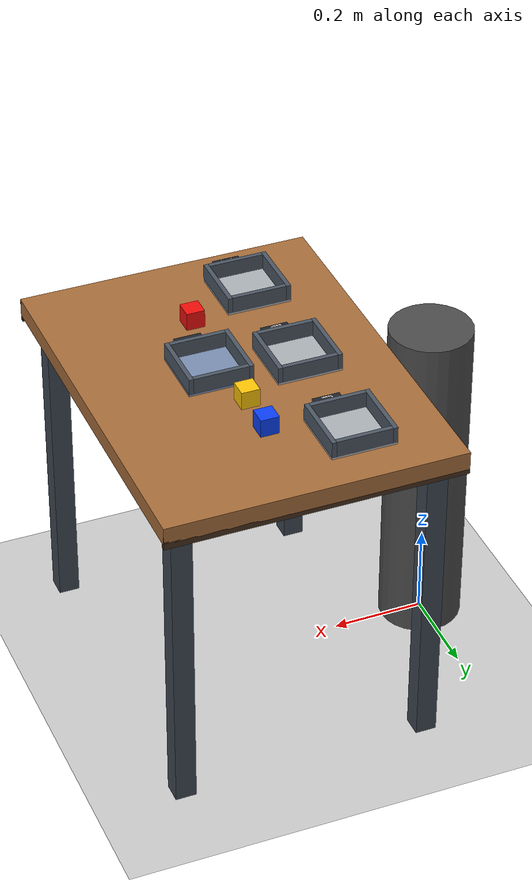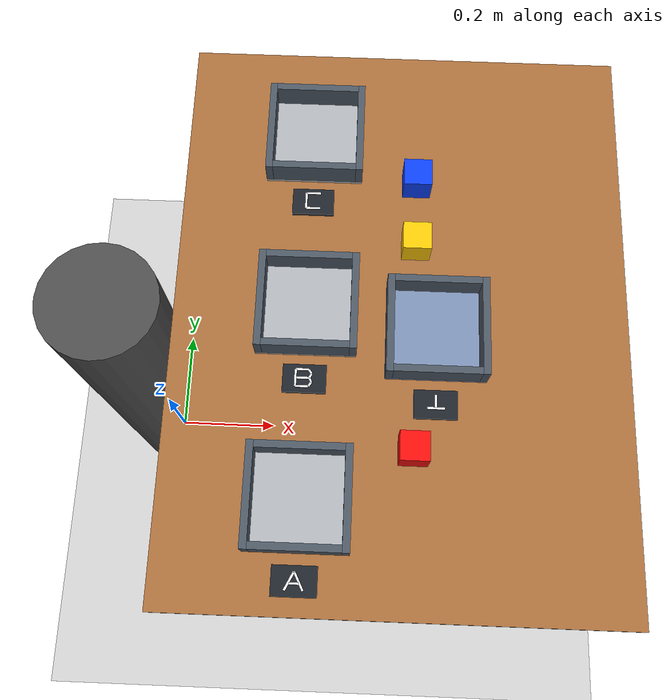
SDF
<?xml version="1.0"?>
<sdf version="1.6">
  <world name="default">
    <gravity>0 0 0</gravity>
    <include><uri>model://sun</uri></include>
    <include><uri>model://ground_plane</uri></include>
    <include><uri>model://ur3_task_table</uri><name>table</name><pose>0.43 0.0 0.72 0 0 0</pose></include>
    <include><uri>model://red_cube</uri><name>red_cube</name><pose>0.45 -0.2 0.76 0 0 0</pose></include>
    <include><uri>model://yellow_cube</uri><name>yellow_cube</name><pose>0.45 0.1 0.76 0 0 0</pose></include>
    <include><uri>model://blue_cube</uri><name>blue_cube</name><pose>0.45 0.2 0.76 0 0 0</pose></include>
    <include><uri>model://zone_a</uri><name>zone_a</name><pose>0.3 -0.27 0.7425 0 0 0</pose></include>
    <include><uri>model://zone_b</uri><name>zone_b</name><pose>0.3 0.0 0.7425 0 0 0</pose></include>
    <include><uri>model://zone_c</uri><name>zone_c</name><pose>0.3 0.27 0.7425 0 0 0</pose></include>
    <include><uri>model://buffer</uri><name>buffer</name><pose>0.48 -0.03 0.7425 0 0 0</pose></include>
    <model name="robot_pedestal"><static>true</static><pose>0 0 0.37 0 0 0</pose>
      <link name="link"><collision name="collision"><geometry><cylinder><radius>0.09</radius><length>0.74</length></cylinder></geometry></collision>
      <visual name="visual"><geometry><cylinder><radius>0.09</radius><length>0.74</length></cylinder></geometry><material><ambient>0.3 0.3 0.3 1</ambient></material></visual></link>
    </model>
    <plugin name="ur3_virtual_attachment" filename="libur3_virtual_attachment.so"/>
  </world>
</sdf>

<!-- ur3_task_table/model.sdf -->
<sdf version="1.6"><model name="ur3_task_table"><static>true</static><link name="link"><visual name="top"><pose>0.000000 0.000000 0.000000 0 0 0.000000</pose><geometry><box><size>0.640000 0.840000 0.040000</size></box></geometry><material><ambient>0.495 0.3225 0.17250000000000001 1</ambient><diffuse>0.66 0.43 0.23 1</diffuse><emissive>0.05280000000000001 0.0344 0.0184 1</emissive><specular>0.12 0.12 0.12 1</specular></material></visual><visual name="front_edge"><pose>0.000000 -0.415000 -0.008000 0 0 0.000000</pose><geometry><box><size>0.640000 0.010000 0.045000</size></box></geometry><material><ambient>0.2025 0.135 0.0825 1</ambient><diffuse>0.27 0.18 0.11 1</diffuse><emissive>0.0216 0.0144 0.0088 1</emissive><specular>0.12 0.12 0.12 1</specular></material></visual><visual name="back_edge"><pose>0.000000 0.415000 -0.008000 0 0 0.000000</pose><geometry><box><size>0.640000 0.010000 0.045000</size></box></geometry><material><ambient>0.2025 0.135 0.0825 1</ambient><diffuse>0.27 0.18 0.11 1</diffuse><emissive>0.0216 0.0144 0.0088 1</emissive><specular>0.12 0.12 0.12 1</specular></material></visual><visual name="leg_-0.27_-0.36"><pose>-0.270000 -0.360000 -0.370000 0 0 0.000000</pose><geometry><box><size>0.045000 0.045000 0.700000</size></box></geometry><material><ambient>0.18 0.21000000000000002 0.24 1</ambient><diffuse>0.24 0.28 0.32 1</diffuse><emissive>0.0192 0.022400000000000003 0.0256 1</emissive><specular>0.12 0.12 0.12 1</specular></material></visual><visual name="leg_-0.27_0.36"><pose>-0.270000 0.360000 -0.370000 0 0 0.000000</pose><geometry><box><size>0.045000 0.045000 0.700000</size></box></geometry><material><ambient>0.18 0.21000000000000002 0.24 1</ambient><diffuse>0.24 0.28 0.32 1</diffuse><emissive>0.0192 0.022400000000000003 0.0256 1</emissive><specular>0.12 0.12 0.12 1</specular></material></visual><visual name="leg_0.27_-0.36"><pose>0.270000 -0.360000 -0.370000 0 0 0.000000</pose><geometry><box><size>0.045000 0.045000 0.700000</size></box></geometry><material><ambient>0.18 0.21000000000000002 0.24 1</ambient><diffuse>0.24 0.28 0.32 1</diffuse><emissive>0.0192 0.022400000000000003 0.0256 1</emissive><specular>0.12 0.12 0.12 1</specular></material></visual><visual name="leg_0.27_0.36"><pose>0.270000 0.360000 -0.370000 0 0 0.000000</pose><geometry><box><size>0.045000 0.045000 0.700000</size></box></geometry><material><ambient>0.18 0.21000000000000002 0.24 1</ambient><diffuse>0.24 0.28 0.32 1</diffuse><emissive>0.0192 0.022400000000000003 0.0256 1</emissive><specular>0.12 0.12 0.12 1</specular></material></visual></link></model></sdf>

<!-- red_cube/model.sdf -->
<sdf version="1.6"><model name="red_cube"><static>false</static><link name="link"><inertial><mass>0.05</mass><inertia><ixx>0.00001</ixx><iyy>0.00001</iyy><izz>0.00001</izz></inertia></inertial><collision name="collision"><geometry><box><size>0.04 0.04 0.04</size></box></geometry></collision><visual name="colored_cube"><pose>0.000000 0.000000 0.000000 0 0 0.000000</pose><geometry><box><size>0.040000 0.040000 0.040000</size></box></geometry><material><ambient>0.7124999999999999 0.04125 0.03375 1</ambient><diffuse>0.95 0.055 0.045 1</diffuse><emissive>0.076 0.0044 0.0036 1</emissive><specular>0.12 0.12 0.12 1</specular></material></visual></link></model></sdf>

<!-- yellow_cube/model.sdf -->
<sdf version="1.6"><model name="yellow_cube"><static>false</static><link name="link"><inertial><mass>0.05</mass><inertia><ixx>0.00001</ixx><iyy>0.00001</iyy><izz>0.00001</izz></inertia></inertial><collision name="collision"><geometry><box><size>0.04 0.04 0.04</size></box></geometry></collision><visual name="colored_cube"><pose>0.000000 0.000000 0.000000 0 0 0.000000</pose><geometry><box><size>0.040000 0.040000 0.040000</size></box></geometry><material><ambient>0.75 0.585 0.018750000000000003 1</ambient><diffuse>1.0 0.78 0.025 1</diffuse><emissive>0.08 0.062400000000000004 0.002 1</emissive><specular>0.12 0.12 0.12 1</specular></material></visual></link></model></sdf>

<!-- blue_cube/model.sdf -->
<sdf version="1.6"><model name="blue_cube"><static>false</static><link name="link"><inertial><mass>0.05</mass><inertia><ixx>0.00001</ixx><iyy>0.00001</iyy><izz>0.00001</izz></inertia></inertial><collision name="collision"><geometry><box><size>0.04 0.04 0.04</size></box></geometry></collision><visual name="colored_cube"><pose>0.000000 0.000000 0.000000 0 0 0.000000</pose><geometry><box><size>0.040000 0.040000 0.040000</size></box></geometry><material><ambient>0.03375 0.1875 0.735 1</ambient><diffuse>0.045 0.25 0.98 1</diffuse><emissive>0.0036 0.02 0.0784 1</emissive><specular>0.12 0.12 0.12 1</specular></material></visual></link></model></sdf>

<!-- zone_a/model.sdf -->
<sdf version="1.6"><model name="zone_a"><static>true</static><link name="link"><visual name="floor"><pose>0.000000 0.000000 0.000000 0 0 0.000000</pose><geometry><box><size>0.140000 0.140000 0.005000</size></box></geometry><material><ambient>0.51 0.5249999999999999 0.54 1</ambient><diffuse>0.68 0.7 0.72 1</diffuse><emissive>0.054400000000000004 0.055999999999999994 0.0576 1</emissive><specular>0.12 0.12 0.12 1</specular></material></visual><visual name="left_wall"><pose>-0.065000 0.000000 0.020000 0 0 0.000000</pose><geometry><box><size>0.010000 0.140000 0.035000</size></box></geometry><material><ambient>0.22499999999999998 0.255 0.2925 1</ambient><diffuse>0.3 0.34 0.39 1</diffuse><emissive>0.024 0.027200000000000002 0.031200000000000002 1</emissive><specular>0.12 0.12 0.12 1</specular></material></visual><visual name="right_wall"><pose>0.065000 0.000000 0.020000 0 0 0.000000</pose><geometry><box><size>0.010000 0.140000 0.035000</size></box></geometry><material><ambient>0.22499999999999998 0.255 0.2925 1</ambient><diffuse>0.3 0.34 0.39 1</diffuse><emissive>0.024 0.027200000000000002 0.031200000000000002 1</emissive><specular>0.12 0.12 0.12 1</specular></material></visual><visual name="front_wall"><pose>0.000000 -0.065000 0.020000 0 0 0.000000</pose><geometry><box><size>0.120000 0.010000 0.035000</size></box></geometry><material><ambient>0.22499999999999998 0.255 0.2925 1</ambient><diffuse>0.3 0.34 0.39 1</diffuse><emissive>0.024 0.027200000000000002 0.031200000000000002 1</emissive><specular>0.12 0.12 0.12 1</specular></material></visual><visual name="back_wall"><pose>0.000000 0.065000 0.020000 0 0 0.000000</pose><geometry><box><size>0.120000 0.010000 0.035000</size></box></geometry><material><ambient>0.22499999999999998 0.255 0.2925 1</ambient><diffuse>0.3 0.34 0.39 1</diffuse><emissive>0.024 0.027200000000000002 0.031200000000000002 1</emissive><specular>0.12 0.12 0.12 1</specular></material></visual><visual name="label_plate"><pose>0.000000 -0.105000 0.000000 0 0 0.000000</pose><geometry><box><size>0.060000 0.040000 0.006000</size></box></geometry><material><ambient>0.09 0.10500000000000001 0.1275 1</ambient><diffuse>0.12 0.14 0.17 1</diffuse><emissive>0.0096 0.011200000000000002 0.013600000000000001 1</emissive><specular>0.12 0.12 0.12 1</specular></material></visual><visual name="label_a_0"><pose>-0.006000 -0.105000 0.005000 0 0 1.107149</pose><geometry><box><size>0.026833 0.003000 0.002000</size></box></geometry><material><ambient>0.75 0.75 0.75 1</ambient><diffuse>1.0 1.0 1.0 1</diffuse><emissive>0.08 0.08 0.08 1</emissive><specular>0.12 0.12 0.12 1</specular></material></visual><visual name="label_a_1"><pose>0.006000 -0.105000 0.005000 0 0 -1.107149</pose><geometry><box><size>0.026833 0.003000 0.002000</size></box></geometry><material><ambient>0.75 0.75 0.75 1</ambient><diffuse>1.0 1.0 1.0 1</diffuse><emissive>0.08 0.08 0.08 1</emissive><specular>0.12 0.12 0.12 1</specular></material></visual><visual name="label_a_2"><pose>0.000000 -0.108000 0.005000 0 0 0.000000</pose><geometry><box><size>0.014000 0.003000 0.002000</size></box></geometry><material><ambient>0.75 0.75 0.75 1</ambient><diffuse>1.0 1.0 1.0 1</diffuse><emissive>0.08 0.08 0.08 1</emissive><specular>0.12 0.12 0.12 1</specular></material></visual></link></model></sdf>

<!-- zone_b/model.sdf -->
<sdf version="1.6"><model name="zone_b"><static>true</static><link name="link"><visual name="floor"><pose>0.000000 0.000000 0.000000 0 0 0.000000</pose><geometry><box><size>0.140000 0.140000 0.005000</size></box></geometry><material><ambient>0.51 0.5249999999999999 0.54 1</ambient><diffuse>0.68 0.7 0.72 1</diffuse><emissive>0.054400000000000004 0.055999999999999994 0.0576 1</emissive><specular>0.12 0.12 0.12 1</specular></material></visual><visual name="left_wall"><pose>-0.065000 0.000000 0.020000 0 0 0.000000</pose><geometry><box><size>0.010000 0.140000 0.035000</size></box></geometry><material><ambient>0.22499999999999998 0.255 0.2925 1</ambient><diffuse>0.3 0.34 0.39 1</diffuse><emissive>0.024 0.027200000000000002 0.031200000000000002 1</emissive><specular>0.12 0.12 0.12 1</specular></material></visual><visual name="right_wall"><pose>0.065000 0.000000 0.020000 0 0 0.000000</pose><geometry><box><size>0.010000 0.140000 0.035000</size></box></geometry><material><ambient>0.22499999999999998 0.255 0.2925 1</ambient><diffuse>0.3 0.34 0.39 1</diffuse><emissive>0.024 0.027200000000000002 0.031200000000000002 1</emissive><specular>0.12 0.12 0.12 1</specular></material></visual><visual name="front_wall"><pose>0.000000 -0.065000 0.020000 0 0 0.000000</pose><geometry><box><size>0.120000 0.010000 0.035000</size></box></geometry><material><ambient>0.22499999999999998 0.255 0.2925 1</ambient><diffuse>0.3 0.34 0.39 1</diffuse><emissive>0.024 0.027200000000000002 0.031200000000000002 1</emissive><specular>0.12 0.12 0.12 1</specular></material></visual><visual name="back_wall"><pose>0.000000 0.065000 0.020000 0 0 0.000000</pose><geometry><box><size>0.120000 0.010000 0.035000</size></box></geometry><material><ambient>0.22499999999999998 0.255 0.2925 1</ambient><diffuse>0.3 0.34 0.39 1</diffuse><emissive>0.024 0.027200000000000002 0.031200000000000002 1</emissive><specular>0.12 0.12 0.12 1</specular></material></visual><visual name="label_plate"><pose>0.000000 -0.105000 0.000000 0 0 0.000000</pose><geometry><box><size>0.060000 0.040000 0.006000</size></box></geometry><material><ambient>0.09 0.10500000000000001 0.1275 1</ambient><diffuse>0.12 0.14 0.17 1</diffuse><emissive>0.0096 0.011200000000000002 0.013600000000000001 1</emissive><specular>0.12 0.12 0.12 1</specular></material></visual><visual name="label_b_0"><pose>-0.012000 -0.105000 0.005000 0 0 1.570796</pose><geometry><box><size>0.024000 0.003000 0.002000</size></box></geometry><material><ambient>0.75 0.75 0.75 1</ambient><diffuse>1.0 1.0 1.0 1</diffuse><emissive>0.08 0.08 0.08 1</emissive><specular>0.12 0.12 0.12 1</specular></material></visual><visual name="label_b_1"><pose>-0.003000 -0.093000 0.005000 0 0 0.000000</pose><geometry><box><size>0.018000 0.003000 0.002000</size></box></geometry><material><ambient>0.75 0.75 0.75 1</ambient><diffuse>1.0 1.0 1.0 1</diffuse><emissive>0.08 0.08 0.08 1</emissive><specular>0.12 0.12 0.12 1</specular></material></visual><visual name="label_b_2"><pose>-0.002500 -0.105000 0.005000 0 0 0.000000</pose><geometry><box><size>0.019000 0.003000 0.002000</size></box></geometry><material><ambient>0.75 0.75 0.75 1</ambient><diffuse>1.0 1.0 1.0 1</diffuse><emissive>0.08 0.08 0.08 1</emissive><specular>0.12 0.12 0.12 1</specular></material></visual><visual name="label_b_3"><pose>-0.003000 -0.117000 0.005000 0 0 0.000000</pose><geometry><box><size>0.018000 0.003000 0.002000</size></box></geometry><material><ambient>0.75 0.75 0.75 1</ambient><diffuse>1.0 1.0 1.0 1</diffuse><emissive>0.08 0.08 0.08 1</emissive><specular>0.12 0.12 0.12 1</specular></material></visual><visual name="label_b_4"><pose>0.008000 -0.096000 0.005000 0 0 -0.982794</pose><geometry><box><size>0.007211 0.003000 0.002000</size></box></geometry><material><ambient>0.75 0.75 0.75 1</ambient><diffuse>1.0 1.0 1.0 1</diffuse><emissive>0.08 0.08 0.08 1</emissive><specular>0.12 0.12 0.12 1</specular></material></visual><visual name="label_b_5"><pose>0.008500 -0.102000 0.005000 0 0 -2.034444</pose><geometry><box><size>0.006708 0.003000 0.002000</size></box></geometry><material><ambient>0.75 0.75 0.75 1</ambient><diffuse>1.0 1.0 1.0 1</diffuse><emissive>0.08 0.08 0.08 1</emissive><specular>0.12 0.12 0.12 1</specular></material></visual><visual name="label_b_6"><pose>0.008500 -0.108000 0.005000 0 0 -1.107149</pose><geometry><box><size>0.006708 0.003000 0.002000</size></box></geometry><material><ambient>0.75 0.75 0.75 1</ambient><diffuse>1.0 1.0 1.0 1</diffuse><emissive>0.08 0.08 0.08 1</emissive><specular>0.12 0.12 0.12 1</specular></material></visual><visual name="label_b_7"><pose>0.008000 -0.114000 0.005000 0 0 -2.158799</pose><geometry><box><size>0.007211 0.003000 0.002000</size></box></geometry><material><ambient>0.75 0.75 0.75 1</ambient><diffuse>1.0 1.0 1.0 1</diffuse><emissive>0.08 0.08 0.08 1</emissive><specular>0.12 0.12 0.12 1</specular></material></visual></link></model></sdf>

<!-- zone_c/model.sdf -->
<sdf version="1.6"><model name="zone_c"><static>true</static><link name="link"><visual name="floor"><pose>0.000000 0.000000 0.000000 0 0 0.000000</pose><geometry><box><size>0.140000 0.140000 0.005000</size></box></geometry><material><ambient>0.51 0.5249999999999999 0.54 1</ambient><diffuse>0.68 0.7 0.72 1</diffuse><emissive>0.054400000000000004 0.055999999999999994 0.0576 1</emissive><specular>0.12 0.12 0.12 1</specular></material></visual><visual name="left_wall"><pose>-0.065000 0.000000 0.020000 0 0 0.000000</pose><geometry><box><size>0.010000 0.140000 0.035000</size></box></geometry><material><ambient>0.22499999999999998 0.255 0.2925 1</ambient><diffuse>0.3 0.34 0.39 1</diffuse><emissive>0.024 0.027200000000000002 0.031200000000000002 1</emissive><specular>0.12 0.12 0.12 1</specular></material></visual><visual name="right_wall"><pose>0.065000 0.000000 0.020000 0 0 0.000000</pose><geometry><box><size>0.010000 0.140000 0.035000</size></box></geometry><material><ambient>0.22499999999999998 0.255 0.2925 1</ambient><diffuse>0.3 0.34 0.39 1</diffuse><emissive>0.024 0.027200000000000002 0.031200000000000002 1</emissive><specular>0.12 0.12 0.12 1</specular></material></visual><visual name="front_wall"><pose>0.000000 -0.065000 0.020000 0 0 0.000000</pose><geometry><box><size>0.120000 0.010000 0.035000</size></box></geometry><material><ambient>0.22499999999999998 0.255 0.2925 1</ambient><diffuse>0.3 0.34 0.39 1</diffuse><emissive>0.024 0.027200000000000002 0.031200000000000002 1</emissive><specular>0.12 0.12 0.12 1</specular></material></visual><visual name="back_wall"><pose>0.000000 0.065000 0.020000 0 0 0.000000</pose><geometry><box><size>0.120000 0.010000 0.035000</size></box></geometry><material><ambient>0.22499999999999998 0.255 0.2925 1</ambient><diffuse>0.3 0.34 0.39 1</diffuse><emissive>0.024 0.027200000000000002 0.031200000000000002 1</emissive><specular>0.12 0.12 0.12 1</specular></material></visual><visual name="label_plate"><pose>0.000000 -0.105000 0.000000 0 0 0.000000</pose><geometry><box><size>0.060000 0.040000 0.006000</size></box></geometry><material><ambient>0.09 0.10500000000000001 0.1275 1</ambient><diffuse>0.12 0.14 0.17 1</diffuse><emissive>0.0096 0.011200000000000002 0.013600000000000001 1</emissive><specular>0.12 0.12 0.12 1</specular></material></visual><visual name="label_c_0"><pose>-0.010000 -0.105000 0.005000 0 0 1.570796</pose><geometry><box><size>0.024000 0.003000 0.002000</size></box></geometry><material><ambient>0.75 0.75 0.75 1</ambient><diffuse>1.0 1.0 1.0 1</diffuse><emissive>0.08 0.08 0.08 1</emissive><specular>0.12 0.12 0.12 1</specular></material></visual><visual name="label_c_1"><pose>0.000500 -0.093000 0.005000 0 0 0.000000</pose><geometry><box><size>0.021000 0.003000 0.002000</size></box></geometry><material><ambient>0.75 0.75 0.75 1</ambient><diffuse>1.0 1.0 1.0 1</diffuse><emissive>0.08 0.08 0.08 1</emissive><specular>0.12 0.12 0.12 1</specular></material></visual><visual name="label_c_2"><pose>0.000500 -0.117000 0.005000 0 0 0.000000</pose><geometry><box><size>0.021000 0.003000 0.002000</size></box></geometry><material><ambient>0.75 0.75 0.75 1</ambient><diffuse>1.0 1.0 1.0 1</diffuse><emissive>0.08 0.08 0.08 1</emissive><specular>0.12 0.12 0.12 1</specular></material></visual></link></model></sdf>

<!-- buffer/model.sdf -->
<sdf version="1.6">
  <model name="buffer">
    <static>true</static>
    <link name="link">
      <visual name="floor">
        <pose>0.000000 0.000000 0.000000 0 0 0.000000</pose>
        <geometry>
          <box>
            <size>0.140000 0.140000 0.005000</size>
          </box>
        </geometry>
        <material>
          <ambient>0.36 0.42 0.52 1</ambient>
          <diffuse>0.48 0.56 0.70 1</diffuse>
          <emissive>0.054400000000000004 0.055999999999999994 0.0576 1</emissive>
          <specular>0.12 0.12 0.12 1</specular>
        </material>
      </visual>
      <visual name="left_wall">
        <pose>-0.065000 0.000000 0.020000 0 0 0.000000</pose>
        <geometry>
          <box>
            <size>0.010000 0.140000 0.035000</size>
          </box>
        </geometry>
        <material>
          <ambient>0.22499999999999998 0.255 0.2925 1</ambient>
          <diffuse>0.3 0.34 0.39 1</diffuse>
          <emissive>0.024 0.027200000000000002 0.031200000000000002 1</emissive>
          <specular>0.12 0.12 0.12 1</specular>
        </material>
      </visual>
      <visual name="right_wall">
        <pose>0.065000 0.000000 0.020000 0 0 0.000000</pose>
        <geometry>
          <box>
            <size>0.010000 0.140000 0.035000</size>
          </box>
        </geometry>
        <material>
          <ambient>0.22499999999999998 0.255 0.2925 1</ambient>
          <diffuse>0.3 0.34 0.39 1</diffuse>
          <emissive>0.024 0.027200000000000002 0.031200000000000002 1</emissive>
          <specular>0.12 0.12 0.12 1</specular>
        </material>
      </visual>
      <visual name="front_wall">
        <pose>0.000000 -0.065000 0.020000 0 0 0.000000</pose>
        <geometry>
          <box>
            <size>0.120000 0.010000 0.035000</size>
          </box>
        </geometry>
        <material>
          <ambient>0.22499999999999998 0.255 0.2925 1</ambient>
          <diffuse>0.3 0.34 0.39 1</diffuse>
          <emissive>0.024 0.027200000000000002 0.031200000000000002 1</emissive>
          <specular>0.12 0.12 0.12 1</specular>
        </material>
      </visual>
      <visual name="back_wall">
        <pose>0.000000 0.065000 0.020000 0 0 0.000000</pose>
        <geometry>
          <box>
            <size>0.120000 0.010000 0.035000</size>
          </box>
        </geometry>
        <material>
          <ambient>0.22499999999999998 0.255 0.2925 1</ambient>
          <diffuse>0.3 0.34 0.39 1</diffuse>
          <emissive>0.024 0.027200000000000002 0.031200000000000002 1</emissive>
          <specular>0.12 0.12 0.12 1</specular>
        </material>
      </visual>
      <visual name="label_plate">
        <pose>0.000000 -0.105000 0.000000 0 0 0.000000</pose>
        <geometry>
          <box>
            <size>0.060000 0.040000 0.006000</size>
          </box>
        </geometry>
        <material>
          <ambient>0.09 0.10500000000000001 0.1275 1</ambient>
          <diffuse>0.12 0.14 0.17 1</diffuse>
          <emissive>0.0096 0.011200000000000002 0.013600000000000001 1</emissive>
          <specular>0.12 0.12 0.12 1</specular>
        </material>
      </visual>
      <visual name="label_t_top">
        <pose>0 -0.111 0.005 0 0 0</pose>
        <geometry>
          <box>
            <size>0.024 0.003 0.002</size>
          </box>
        </geometry>
        <material>
          <ambient>0.75 0.75 0.75 1</ambient>
          <diffuse>1 1 1 1</diffuse>
          <emissive>0.08 0.08 0.08 1</emissive>
          <specular>0.12 0.12 0.12 1</specular>
        </material>
      </visual>
      <visual name="label_t_stem">
        <pose>0 -0.101 0.005 0 0 0</pose>
        <geometry>
          <box>
            <size>0.003 0.018 0.002</size>
          </box>
        </geometry>
        <material>
          <ambient>0.75 0.75 0.75 1</ambient>
          <diffuse>1 1 1 1</diffuse>
          <emissive>0.08 0.08 0.08 1</emissive>
          <specular>0.12 0.12 0.12 1</specular>
        </material>
      </visual>
    </link>
  </model>
</sdf>
